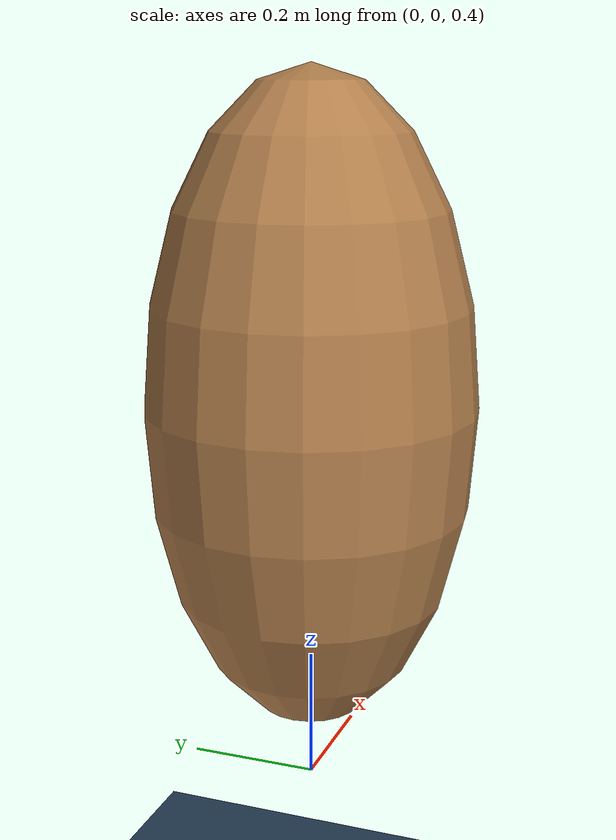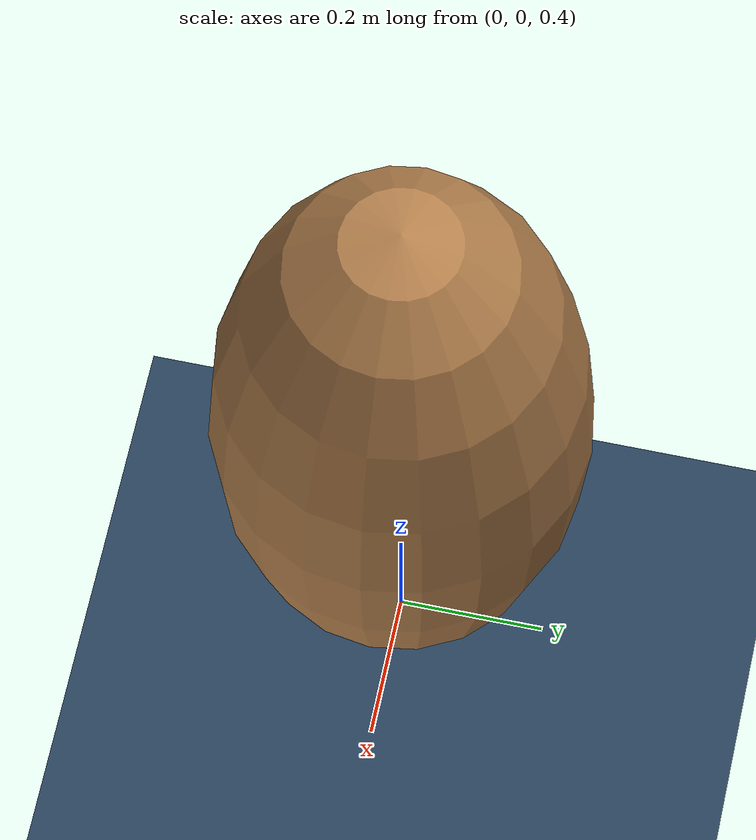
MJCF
<mujoco model="ellipsoid">
    <include file="./common/visual.xml"/>
    <include file="./common/skybox.xml"/>
    <include file="./common/materials.xml"/>

    <option timestep="0.01">
        <flag contact="disable" energy="disable"/>
    </option>

    <worldbody>
        <light name="light" pos="0 0 2"/>
        <geom name="floor" size="2 2 .2" type="plane" material="grid"/>
        <camera name="fixed" pos="0 -1.5 2" xyaxes='1 0 0 0 1 1'/>
        <camera name="lookat" mode="targetbodycom" target="base" pos="0 -1.5 2"/>
        <body name="base" pos="0 0 1">
            <joint name="ball_1" type="ball" damping="0.05"/>
            <geom name="base" material="self" type="ellipsoid" pos="0 0 0" size="0.25 0.25 0.5" mass="1"/>
        </body>
    </worldbody>

    <actuator>
        <motor name="ball_motor_1" jointinparent="ball_1" gear=".1 0 0" ctrlrange="-1 1" ctrllimited="true"/>
        <motor name="ball_motor_2" jointinparent="ball_1" gear="0 .1 0" ctrlrange="-1 1" ctrllimited="true"/>
        <motor name="ball_motor_3" jointinparent="ball_1" gear="0 0 .1" ctrlrange="-1 1" ctrllimited="true"/>
    </actuator>
</mujoco>

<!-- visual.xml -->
<mujoco>
    <visual>
        <headlight ambient=".4 .4 .4" diffuse=".8 .8 .8" specular="0.1 0.1 0.1"/>
        <map znear=".01"/>
        <quality shadowsize="2048"/>
    </visual>
</mujoco>

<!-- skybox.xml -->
<mujoco>
    <asset>
        <texture name="skybox" type="skybox" builtin="gradient" rgb1=".4 .6 .8" rgb2="0 0 0"
                 width="800" height="800" mark="random" markrgb="1 1 1"/>
    </asset>
</mujoco>

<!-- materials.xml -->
<!--
Common textures, colors and materials to be used throughout this suite. Some
materials such as xxx_highlight are activated on occurence of certain events,
for example receiving a positive reward.
-->
<mujoco>
    <asset>
        <texture name="grid" type="2d" builtin="checker" rgb1=".1 .2 .3" rgb2=".2 .3 .4" width="300" height="300" mark="edge" markrgb=".2 .3 .4"/>
        <material name="grid" texture="grid" texrepeat="1 1" texuniform="true" reflectance=".2"/>
        <material name="self" rgba=".7 .5 .3 1"/>
        <material name="self_default" rgba=".7 .5 .3 1"/>
        <material name="self_highlight" rgba="0 .5 .3 1"/>
        <material name="effector" rgba=".7 .4 .2 1"/>
        <material name="effector_default" rgba=".7 .4 .2 1"/>
        <material name="effector_highlight" rgba="0 .5 .3 1"/>
        <material name="decoration" rgba=".3 .5 .7 1"/>
        <material name="eye" rgba="0 .2 1 1"/>
        <material name="target" rgba=".6 .3 .3 1"/>
        <material name="target_default" rgba=".6 .3 .3 1"/>
        <material name="target_highlight" rgba=".6 .3 .3 .4"/>
        <material name="site" rgba=".5 .5 .5 .3"/>
    </asset>
</mujoco>
